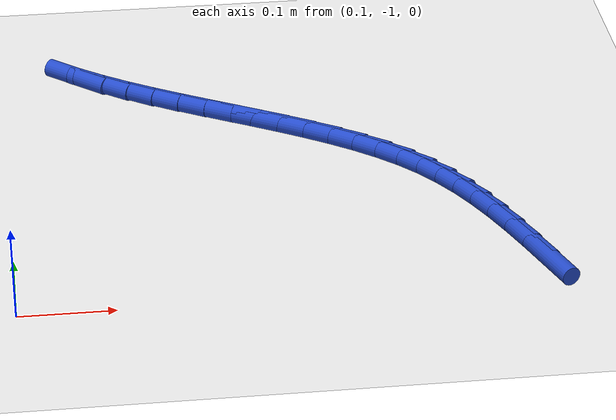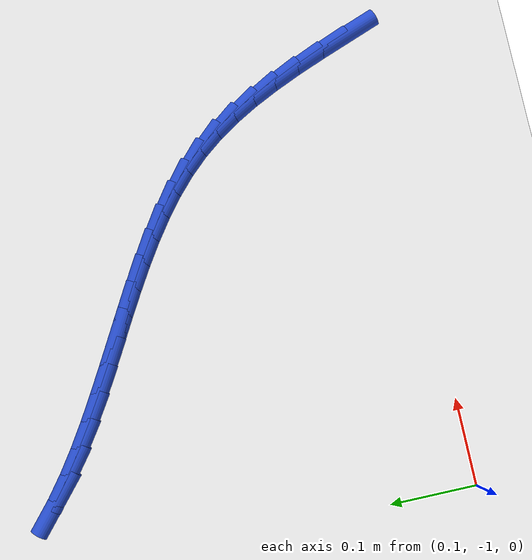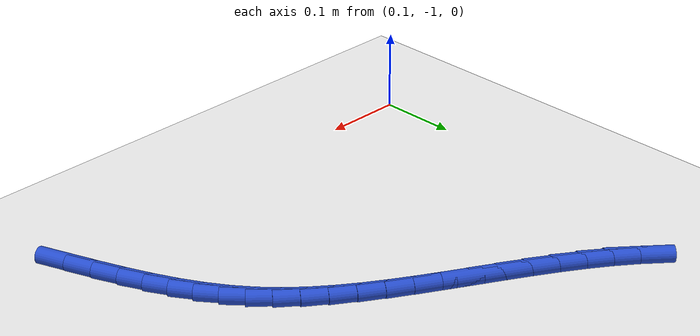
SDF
<sdf version="1.6">
 <world name="default">
  <model name="ground_plane">
   <static>1</static>
   <link name="link">
    <collision name="collision">
     <geometry><plane><normal>0 0 1</normal><size>100 100</size></plane></geometry>
     <surface><friction><ode><mu>100</mu><mu2>50</mu2></ode></friction></surface>
    </collision>
    <visual name="visual">
     <cast_shadows>0</cast_shadows>
     <geometry><plane><normal>0 0 1</normal><size>100 100</size></plane></geometry>
     <material>
      <script><uri>file://media/materials/scripts/gazebo.material</uri><name>Gazebo/WhiteGlow</name></script>
     </material>
    </visual>
   </link>
  </model>
  <model name="line">
   <link name="link_220">
    <pose>0.6399629508138184 -0.9707991975915412 0.01 0 1.57 -1.2116733189934945</pose>
    <collision name="collision">
     <geometry><cylinder><radius>0.01</radius><length>0.08</length></cylinder></geometry>
    </collision>
    <visual name="visual">
     <material>
      <script><name>Gazebo/Blue</name><uri>file://media/materials/scripts/gazebo.material</uri></script>
     </material>
     <geometry><cylinder><radius>0.01</radius><length>0.08</length></cylinder></geometry>
    </visual>
   </link>
   <link name="link_221">
    <pose>0.6268905033874267 -0.9359766617999641 0.01 0 1.57 -1.1911005855298078</pose>
    <collision name="collision">
     <geometry><cylinder><radius>0.01</radius><length>0.08</length></cylinder></geometry>
    </collision>
    <visual name="visual">
     <material>
      <script><name>Gazebo/Blue</name><uri>file://media/materials/scripts/gazebo.material</uri></script>
     </material>
     <geometry><cylinder><radius>0.01</radius><length>0.08</length></cylinder></geometry>
    </visual>
   </link>
   <link name="link_222">
    <pose>0.6140130261572878 -0.9037071326706229 0.01 0 1.57 -1.1593692225991432</pose>
    <collision name="collision">
     <geometry><cylinder><radius>0.01</radius><length>0.08</length></cylinder></geometry>
    </collision>
    <visual name="visual">
     <material>
      <script><name>Gazebo/Blue</name><uri>file://media/materials/scripts/gazebo.material</uri></script>
     </material>
     <geometry><cylinder><radius>0.01</radius><length>0.08</length></cylinder></geometry>
    </visual>
   </link>
   <link name="link_223">
    <pose>0.6009795785157752 -0.873836440687967 0.01 0 1.57 -1.115301835863122</pose>
    <collision name="collision">
     <geometry><cylinder><radius>0.01</radius><length>0.08</length></cylinder></geometry>
    </collision>
    <visual name="visual">
     <material>
      <script><name>Gazebo/Blue</name><uri>file://media/materials/scripts/gazebo.material</uri></script>
     </material>
     <geometry><cylinder><radius>0.01</radius><length>0.08</length></cylinder></geometry>
    </visual>
   </link>
   <link name="link_224">
    <pose>0.5874325438209393 -0.8461809513453344 0.01 0 1.57 -1.0582650901072423</pose>
    <collision name="collision">
     <geometry><cylinder><radius>0.01</radius><length>0.08</length></cylinder></geometry>
    </collision>
    <visual name="visual">
     <material>
      <script><name>Gazebo/Blue</name><uri>file://media/materials/scripts/gazebo.material</uri></script>
     </material>
     <geometry><cylinder><radius>0.01</radius><length>0.08</length></cylinder></geometry>
    </visual>
   </link>
   <link name="link_225">
    <pose>0.5730143054308303 -0.8205570301360628 0.01 0 1.57 -0.9887455785351512</pose>
    <collision name="collision">
     <geometry><cylinder><radius>0.01</radius><length>0.08</length></cylinder></geometry>
    </collision>
    <visual name="visual">
     <material>
      <script><name>Gazebo/Blue</name><uri>file://media/materials/scripts/gazebo.material</uri></script>
     </material>
     <geometry><cylinder><radius>0.01</radius><length>0.08</length></cylinder></geometry>
    </visual>
   </link>
   <link name="link_226">
    <pose>0.5573672467034985 -0.7967810425534902 0.01 0 1.57 -0.9087531505980349</pose>
    <collision name="collision">
     <geometry><cylinder><radius>0.01</radius><length>0.08</length></cylinder></geometry>
    </collision>
    <visual name="visual">
     <material>
      <script><name>Gazebo/Blue</name><uri>file://media/materials/scripts/gazebo.material</uri></script>
     </material>
     <geometry><cylinder><radius>0.01</radius><length>0.08</length></cylinder></geometry>
    </visual>
   </link>
   <link name="link_227">
    <pose>0.5401337509969947 -0.7746693540909548 0.01 0 1.57 -0.822027106283249</pose>
    <collision name="collision">
     <geometry><cylinder><radius>0.01</radius><length>0.08</length></cylinder></geometry>
    </collision>
    <visual name="visual">
     <material>
      <script><name>Gazebo/Blue</name><uri>file://media/materials/scripts/gazebo.material</uri></script>
     </material>
     <geometry><cylinder><radius>0.01</radius><length>0.08</length></cylinder></geometry>
    </visual>
   </link>
   <link name="link_228">
    <pose>0.5209612898527719 -0.7540382791061103 0.01 0 1.57 -0.7390631762872658</pose>
    <collision name="collision">
     <geometry><cylinder><radius>0.01</radius><length>0.08</length></cylinder></geometry>
    </collision>
    <visual name="visual">
     <material>
      <script><name>Gazebo/Blue</name><uri>file://media/materials/scripts/gazebo.material</uri></script>
     </material>
     <geometry><cylinder><radius>0.01</radius><length>0.08</length></cylinder></geometry>
    </visual>
   </link>
   <link name="link_229">
    <pose>0.49974426207085276 -0.7347016503647964 0.01 0 1.57 -0.6699571781777729</pose>
    <collision name="collision">
     <geometry><cylinder><radius>0.01</radius><length>0.08</length></cylinder></geometry>
    </collision>
    <visual name="visual">
     <material>
      <script><name>Gazebo/Blue</name><uri>file://media/materials/scripts/gazebo.material</uri></script>
     </material>
     <geometry><cylinder><radius>0.01</radius><length>0.08</length></cylinder></geometry>
    </visual>
   </link>
   <link name="link_230">
    <pose>0.4767295568588417 -0.716469758142992 0.01 0 1.57 -0.6145508254579414</pose>
    <collision name="collision">
     <geometry><cylinder><radius>0.01</radius><length>0.08</length></cylinder></geometry>
    </collision>
    <visual name="visual">
     <material>
      <script><name>Gazebo/Blue</name><uri>file://media/materials/scripts/gazebo.material</uri></script>
     </material>
     <geometry><cylinder><radius>0.01</radius><length>0.08</length></cylinder></geometry>
    </visual>
   </link>
   <link name="link_231">
    <pose>0.45219110627998016 -0.699152620938948 0.01 0 1.57 -0.5717268402209745</pose>
    <collision name="collision">
     <geometry><cylinder><radius>0.01</radius><length>0.08</length></cylinder></geometry>
    </collision>
    <visual name="visual">
     <material>
      <script><name>Gazebo/Blue</name><uri>file://media/materials/scripts/gazebo.material</uri></script>
     </material>
     <geometry><cylinder><radius>0.01</radius><length>0.08</length></cylinder></geometry>
    </visual>
   </link>
   <link name="link_232">
    <pose>0.4264028423975096 -0.6825602572509158 0.01 0 1.57 -0.5403943510143983</pose>
    <collision name="collision">
     <geometry><cylinder><radius>0.01</radius><length>0.08</length></cylinder></geometry>
    </collision>
    <visual name="visual">
     <material>
      <script><name>Gazebo/Blue</name><uri>file://media/materials/scripts/gazebo.material</uri></script>
     </material>
     <geometry><cylinder><radius>0.01</radius><length>0.08</length></cylinder></geometry>
    </visual>
   </link>
   <link name="link_233">
    <pose>0.39963869727467155 -0.6665026855771458 0.01 0 1.57 -0.5196358994545462</pose>
    <collision name="collision">
     <geometry><cylinder><radius>0.01</radius><length>0.08</length></cylinder></geometry>
    </collision>
    <visual name="visual">
     <material>
      <script><name>Gazebo/Blue</name><uri>file://media/materials/scripts/gazebo.material</uri></script>
     </material>
     <geometry><cylinder><radius>0.01</radius><length>0.08</length></cylinder></geometry>
    </visual>
   </link>
   <link name="link_234">
    <pose>0.3721726029747079 -0.6507899244158895 0.01 0 1.57 -0.5087735967137398</pose>
    <collision name="collision">
     <geometry><cylinder><radius>0.01</radius><length>0.08</length></cylinder></geometry>
    </collision>
    <visual name="visual">
     <material>
      <script><name>Gazebo/Blue</name><uri>file://media/materials/scripts/gazebo.material</uri></script>
     </material>
     <geometry><cylinder><radius>0.01</radius><length>0.08</length></cylinder></geometry>
    </visual>
   </link>
   <link name="link_235">
    <pose>0.34427849156086 -0.6352319922653977 0.01 0 1.57 -0.507391421114253</pose>
    <collision name="collision">
     <geometry><cylinder><radius>0.01</radius><length>0.08</length></cylinder></geometry>
    </collision>
    <visual name="visual">
     <material>
      <script><name>Gazebo/Blue</name><uri>file://media/materials/scripts/gazebo.material</uri></script>
     </material>
     <geometry><cylinder><radius>0.01</radius><length>0.08</length></cylinder></geometry>
    </visual>
   </link>
   <link name="link_236">
    <pose>0.31623029509636874 -0.6196389076239212 0.01 0 1.57 -0.5153363311698873</pose>
    <collision name="collision">
     <geometry><cylinder><radius>0.01</radius><length>0.08</length></cylinder></geometry>
    </collision>
    <visual name="visual">
     <material>
      <script><name>Gazebo/Blue</name><uri>file://media/materials/scripts/gazebo.material</uri></script>
     </material>
     <geometry><cylinder><radius>0.01</radius><length>0.08</length></cylinder></geometry>
    </visual>
   </link>
   <link name="link_237">
    <pose>0.28830194564447736 -0.6038206889897118 0.01 0 1.57 -0.532709085507402</pose>
    <collision name="collision">
     <geometry><cylinder><radius>0.01</radius><length>0.08</length></cylinder></geometry>
    </collision>
    <visual name="visual">
     <material>
      <script><name>Gazebo/Blue</name><uri>file://media/materials/scripts/gazebo.material</uri></script>
     </material>
     <geometry><cylinder><radius>0.01</radius><length>0.08</length></cylinder></geometry>
    </visual>
   </link>
   <link name="link_238">
    <pose>0.26076737526842675 -0.5875873548610202 0.01 0 1.57 -0.5598467874345057</pose>
    <collision name="collision">
     <geometry><cylinder><radius>0.01</radius><length>0.08</length></cylinder></geometry>
    </collision>
    <visual name="visual">
     <material>
      <script><name>Gazebo/Blue</name><uri>file://media/materials/scripts/gazebo.material</uri></script>
     </material>
     <geometry><cylinder><radius>0.01</radius><length>0.08</length></cylinder></geometry>
    </visual>
   </link>
   <link name="link_239">
    <pose>0.23390051603145837 -0.5707489237360976 0.01 0 1.57 -0.597291720837396</pose>
    <collision name="collision">
     <geometry><cylinder><radius>0.01</radius><length>0.08</length></cylinder></geometry>
    </collision>
    <visual name="visual">
     <material>
      <script><name>Gazebo/Blue</name><uri>file://media/materials/scripts/gazebo.material</uri></script>
     </material>
     <geometry><cylinder><radius>0.01</radius><length>0.08</length></cylinder></geometry>
    </visual>
   </link>
   <link name="link_240">
    <pose>0.2079752999968139 -0.5531154141131948 0.01 0 1.57 -0.6457336129784111</pose>
    <collision name="collision">
     <geometry><cylinder><radius>0.01</radius><length>0.08</length></cylinder></geometry>
    </collision>
    <visual name="visual">
     <material>
      <script><name>Gazebo/Blue</name><uri>file://media/materials/scripts/gazebo.material</uri></script>
     </material>
     <geometry><cylinder><radius>0.01</radius><length>0.08</length></cylinder></geometry>
    </visual>
   </link>
   <link name="link_241">
    <pose>0.183265659227735 -0.5344968444905628 0.01 0 1.57 -0.7059049290584418</pose>
    <collision name="collision">
     <geometry><cylinder><radius>0.01</radius><length>0.08</length></cylinder></geometry>
    </collision>
    <visual name="visual">
     <material>
      <script><name>Gazebo/Blue</name><uri>file://media/materials/scripts/gazebo.material</uri></script>
     </material>
     <geometry><cylinder><radius>0.01</radius><length>0.08</length></cylinder></geometry>
    </visual>
   </link>
  </model>
 </world>
</sdf>
